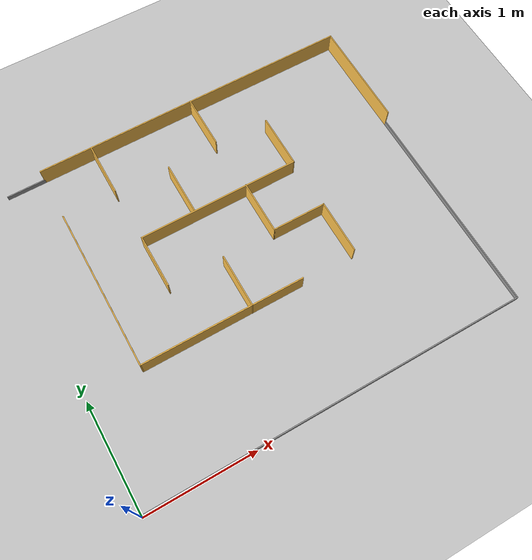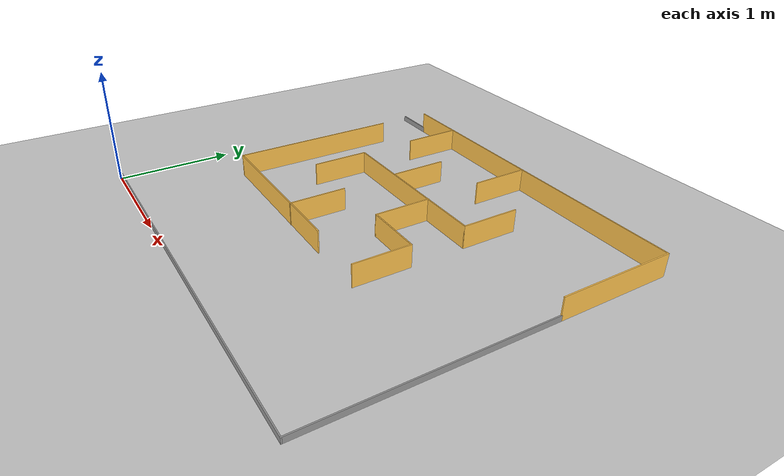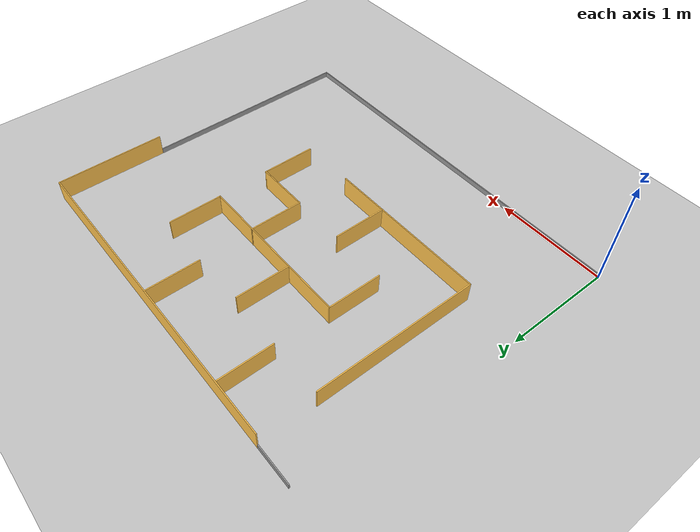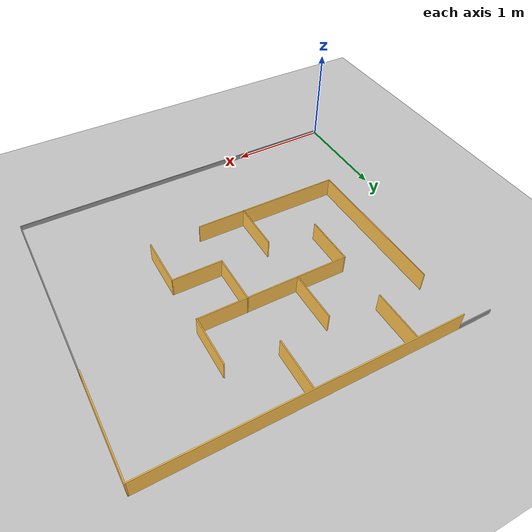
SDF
<sdf version="1.4">
  <world name="default">

    <scene>
      <ambient>0.4 0.4 0.4 1</ambient>
      <background>0.7 0.7 0.7 1</background>
      <shadows>true</shadows>
    </scene>

    <!-- A global light source -->
    <include>
      <uri>model://sun</uri>
    </include>

    <!-- A ground plane -->
    <include>
      <uri>model://ground_plane</uri>
    </include>

    <!-- My maze -->
    <include>
      <uri>model://my_maze</uri>
	<pose> 1.75 1.5 0 0 0 0</pose>
    </include>

    <physics type="ode">
      <real_time_update_rate>1000.0</real_time_update_rate>
      <max_step_size>0.001</max_step_size>
      <real_time_factor>1</real_time_factor>
      <ode>
        <solver>
          <type>quick</type>
          <iters>150</iters>
          <precon_iters>0</precon_iters>
          <sor>1.400000</sor>
          <use_dynamic_moi_rescaling>1</use_dynamic_moi_rescaling>
        </solver>
        <constraints>
          <cfm>0.00001</cfm>
          <erp>0.2</erp>
          <contact_max_correcting_vel>2000.000000</contact_max_correcting_vel>
          <contact_surface_layer>0.01000</contact_surface_layer>
        </constraints>
      </ode>
    </physics>
  </world>

</sdf>

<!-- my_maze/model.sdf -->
<sdf version='1.6'>
  <model name='my_maze'>
    <pose frame=''>0.257 -0.171 0 0 -0 0</pose>
    <link name='Wall_27'>
      <collision name='Wall_27_Collision'>
        <geometry>
          <box>
            <size>3 0.01 0.2</size>
          </box>
        </geometry>
        <pose frame=''>0 0 0.1 0 -0 0</pose>
      </collision>
      <visual name='Wall_27_Visual'>
        <pose frame=''>0 0 0.1 0 -0 0</pose>
        <geometry>
          <box>
            <size>3 0.01 0.2</size>
          </box>
        </geometry>
        <material>
          <script>
            <uri>file://media/materials/scripts/gazebo.material</uri>
            <name>Gazebo/Grey</name>
          </script>
          <ambient>1 0.764706 0.305882 1</ambient>
        </material>
      </visual>
      <pose frame=''>0.25 1.49 0 0 -0 0</pose>
    </link>
    <link name='Wall_29'>
      <collision name='Wall_29_Collision'>
        <geometry>
          <box>
            <size>0.5 0.01 0.2</size>
          </box>
        </geometry>
        <pose frame=''>0 0 0.1 0 -0 0</pose>
      </collision>
      <visual name='Wall_29_Visual'>
        <pose frame=''>0 0 0.1 0 -0 0</pose>
        <geometry>
          <box>
            <size>0.5 0.01 0.2</size>
          </box>
        </geometry>
        <material>
          <script>
            <uri>file://media/materials/scripts/gazebo.material</uri>
            <name>Gazebo/Grey</name>
          </script>
          <ambient>1 0.764706 0.305882 1</ambient>
        </material>
      </visual>
      <pose frame=''>-0.757 1.239 0 0 0 -1.5708</pose>
    </link>
    <link name='Wall_31'>
      <collision name='Wall_31_Collision'>
        <geometry>
          <box>
            <size>0.5 0.01 0.2</size>
          </box>
        </geometry>
        <pose frame=''>0 0 0.1 0 -0 0</pose>
      </collision>
      <visual name='Wall_31_Visual'>
        <pose frame=''>0 0 0.1 0 -0 0</pose>
        <geometry>
          <box>
            <size>0.5 0.01 0.2</size>
          </box>
        </geometry>
        <material>
          <script>
            <uri>file://media/materials/scripts/gazebo.material</uri>
            <name>Gazebo/Grey</name>
          </script>
          <ambient>1 0.764706 0.305882 1</ambient>
        </material>
      </visual>
      <pose frame=''>0.237 1.243 0 0 0 -1.5708</pose>
    </link>
    <link name='Wall_33'>
      <collision name='Wall_33_Collision'>
        <geometry>
          <box>
            <size>0.36 0.01 0.05</size>
          </box>
        </geometry>
        <pose frame=''>0 0 0.025 0 -0 0</pose>
      </collision>
      <visual name='Wall_33_Visual'>
        <pose frame=''>0 0 0.025 0 -0 0</pose>
        <geometry>
          <box>
            <size>0.36 0.01 0.05</size>
          </box>
        </geometry>
        <material>
          <script>
            <uri>file://media/materials/scripts/gazebo.material</uri>
            <name>Gazebo/Grey</name>
          </script>
          <ambient>0 0 0 1</ambient>
        </material>
      </visual>
      <pose frame=''>-1.42 1.49 0 0 -0 3.14159</pose>
    </link>
    <link name='Wall_35'>
      <collision name='Wall_35_Collision'>
        <geometry>
          <box>
            <size>1 0.01 0.2</size>
          </box>
        </geometry>
        <pose frame=''>0 0 0.1 0 -0 0</pose>
      </collision>
      <visual name='Wall_35_Visual'>
        <pose frame=''>0 0 0.1 0 -0 0</pose>
        <geometry>
          <box>
            <size>1 0.01 0.2</size>
          </box>
        </geometry>
        <material>
          <script>
            <uri>file://media/materials/scripts/gazebo.material</uri>
            <name>Gazebo/Grey</name>
          </script>
          <ambient>1 0.764706 0.305882 1</ambient>
        </material>
      </visual>
      <pose frame=''>1.745 0.995 0 0 0 -1.5708</pose>
    </link>
    <link name='Wall_38'>
      <collision name='Wall_38_Collision'>
        <geometry>
          <box>
            <size>1.5 0.01 0.2</size>
          </box>
        </geometry>
        <pose frame=''>0 0 0.1 0 -0 0</pose>
      </collision>
      <visual name='Wall_38_Visual'>
        <pose frame=''>0 0 0.1 0 -0 0</pose>
        <geometry>
          <box>
            <size>1.5 0.01 0.2</size>
          </box>
        </geometry>
        <material>
          <script>
            <uri>file://media/materials/scripts/gazebo.material</uri>
            <name>Gazebo/Grey</name>
          </script>
          <ambient>1 0.764706 0.305882 1</ambient>
        </material>
      </visual>
      <pose frame=''>-1.249 0.243 0 0 0 -1.5708</pose>
    </link>
    <link name='Wall_39'>
      <collision name='Wall_39_Collision'>
        <geometry>
          <box>
            <size>1.5 0.01 0.2</size>
          </box>
        </geometry>
        <pose frame=''>0 0 0.1 0 -0 0</pose>
      </collision>
      <visual name='Wall_39_Visual'>
        <pose frame=''>0 0 0.1 0 -0 0</pose>
        <geometry>
          <box>
            <size>1.5 0.01 0.2</size>
          </box>
        </geometry>
        <material>
          <script>
            <uri>file://media/materials/scripts/gazebo.material</uri>
            <name>Gazebo/Grey</name>
          </script>
          <ambient>1 0.764706 0.305882 1</ambient>
        </material>
      </visual>
      <pose frame=''>-0.504 -0.502 0 0 -0 0</pose>
    </link>
    <link name='Wall_41'>
      <collision name='Wall_41_Collision'>
        <geometry>
          <box>
            <size>0.5 0.01 0.2</size>
          </box>
        </geometry>
        <pose frame=''>0 0 0.1 0 -0 0</pose>
      </collision>
      <visual name='Wall_41_Visual'>
        <pose frame=''>0 0 0.1 0 -0 0</pose>
        <geometry>
          <box>
            <size>0.5 0.01 0.2</size>
          </box>
        </geometry>
        <material>
          <script>
            <uri>file://media/materials/scripts/gazebo.material</uri>
            <name>Gazebo/Grey</name>
          </script>
          <ambient>1 0.764706 0.305882 1</ambient>
        </material>
      </visual>
      <pose frame=''>-0.753 0.236 0 0 -0 1.5708</pose>
    </link>
    <link name='Wall_42'>
      <collision name='Wall_42_Collision'>
        <geometry>
          <box>
            <size>1.5 0.01 0.2</size>
          </box>
        </geometry>
        <pose frame=''>0 0 0.1 0 -0 0</pose>
      </collision>
      <visual name='Wall_42_Visual'>
        <pose frame=''>0 0 0.1 0 -0 0</pose>
        <geometry>
          <box>
            <size>1.5 0.01 0.2</size>
          </box>
        </geometry>
        <material>
          <script>
            <uri>file://media/materials/scripts/gazebo.material</uri>
            <name>Gazebo/Grey</name>
          </script>
          <ambient>1 0.764706 0.305882 1</ambient>
        </material>
      </visual>
      <pose frame=''>-0.008 0.481 0 0 -0 0</pose>
    </link>
    <link name='Wall_43'>
      <collision name='Wall_43_Collision'>
        <geometry>
          <box>
            <size>0.5 0.01 0.2</size>
          </box>
        </geometry>
        <pose frame=''>0 0 0.1 0 -0 0</pose>
      </collision>
      <visual name='Wall_43_Visual'>
        <pose frame=''>0 0 0.1 0 -0 0</pose>
        <geometry>
          <box>
            <size>0.5 0.01 0.2</size>
          </box>
        </geometry>
        <material>
          <script>
            <uri>file://media/materials/scripts/gazebo.material</uri>
            <name>Gazebo/Grey</name>
          </script>
          <ambient>1 0.764706 0.305882 1</ambient>
        </material>
      </visual>
      <pose frame=''>0.737 0.726 0 0 -0 1.5708</pose>
    </link>
    <link name='Wall_45'>
      <collision name='Wall_45_Collision'>
        <geometry>
          <box>
            <size>0.5 0.01 0.2</size>
          </box>
        </geometry>
        <pose frame=''>0 0 0.1 0 -0 0</pose>
      </collision>
      <visual name='Wall_45_Visual'>
        <pose frame=''>0 0 0.1 0 -0 0</pose>
        <geometry>
          <box>
            <size>0.5 0.01 0.2</size>
          </box>
        </geometry>
        <material>
          <script>
            <uri>file://media/materials/scripts/gazebo.material</uri>
            <name>Gazebo/Grey</name>
          </script>
          <ambient>1 0.764706 0.305882 1</ambient>
        </material>
      </visual>
      <pose frame=''>-0.247 0.729 0 0 -0 1.5708</pose>
    </link>
    <link name='Wall_47'>
      <collision name='Wall_47_Collision'>
        <geometry>
          <box>
            <size>0.5 0.01 0.2</size>
          </box>
        </geometry>
        <pose frame=''>0 0 0.1 0 -0 0</pose>
      </collision>
      <visual name='Wall_47_Visual'>
        <pose frame=''>0 0 0.1 0 -0 0</pose>
        <geometry>
          <box>
            <size>0.5 0.01 0.2</size>
          </box>
        </geometry>
        <material>
          <script>
            <uri>file://media/materials/scripts/gazebo.material</uri>
            <name>Gazebo/Grey</name>
          </script>
          <ambient>1 0.764706 0.305882 1</ambient>
        </material>
      </visual>
      <pose frame=''>0.256 0.239 0 0 0 -1.5708</pose>
    </link>
    <link name='Wall_48'>
      <collision name='Wall_48_Collision'>
        <geometry>
          <box>
            <size>0.5 0.01 0.2</size>
          </box>
        </geometry>
        <pose frame=''>0 0 0.1 0 -0 0</pose>
      </collision>
      <visual name='Wall_48_Visual'>
        <pose frame=''>0 0 0.1 0 -0 0</pose>
        <geometry>
          <box>
            <size>0.5 0.01 0.2</size>
          </box>
        </geometry>
        <material>
          <script>
            <uri>file://media/materials/scripts/gazebo.material</uri>
            <name>Gazebo/Grey</name>
          </script>
          <ambient>1 0.764706 0.305882 1</ambient>
        </material>
      </visual>
      <pose frame=''>0.501 -0.006 0 0 -0 0</pose>
    </link>
    <link name='Wall_49'>
      <collision name='Wall_49_Collision'>
        <geometry>
          <box>
            <size>0.5 0.01 0.2</size>
          </box>
        </geometry>
        <pose frame=''>0 0 0.1 0 -0 0</pose>
      </collision>
      <visual name='Wall_49_Visual'>
        <pose frame=''>0 0 0.1 0 -0 0</pose>
        <geometry>
          <box>
            <size>0.5 0.01 0.2</size>
          </box>
        </geometry>
        <material>
          <script>
            <uri>file://media/materials/scripts/gazebo.material</uri>
            <name>Gazebo/Grey</name>
          </script>
          <ambient>1 0.764706 0.305882 1</ambient>
        </material>
      </visual>
      <pose frame=''>0.746 -0.251 0 0 0 -1.5708</pose>
    </link>
    <link name='Wall_51'>
      <collision name='Wall_51_Collision'>
        <geometry>
          <box>
            <size>0.5 0.01 0.2</size>
          </box>
        </geometry>
        <pose frame=''>0 0 0.1 0 -0 0</pose>
      </collision>
      <visual name='Wall_51_Visual'>
        <pose frame=''>0 0 0.1 0 -0 0</pose>
        <geometry>
          <box>
            <size>0.5 0.01 0.2</size>
          </box>
        </geometry>
        <material>
          <script>
            <uri>file://media/materials/scripts/gazebo.material</uri>
            <name>Gazebo/Grey</name>
          </script>
          <ambient>1 0.764706 0.305882 1</ambient>
        </material>
      </visual>
      <pose frame=''>-0.238 -0.259 0 0 -0 1.5708</pose>
    </link>
    <link name='Wall_53'>
      <collision name='Wall_53_Collision'>
        <geometry>
          <box>
            <size>2 0.01 0.05</size>
          </box>
        </geometry>
        <pose frame=''>0 0 0.025 0 -0 0</pose>
      </collision>
      <visual name='Wall_53_Visual'>
        <pose frame=''>0 0 0.025 0 -0 0</pose>
        <geometry>
          <box>
            <size>2 0.01 0.05</size>
          </box>
        </geometry>
        <material>
          <script>
            <uri>file://media/materials/scripts/gazebo.material</uri>
            <name>Gazebo/Grey</name>
          </script>
          <ambient>0 0 0 1</ambient>
        </material>
      </visual>
      <pose frame=''>1.745 -0.495 0 0 0 -1.5708</pose>
    </link>
    <link name='Wall_54'>
      <collision name='Wall_54_Collision'>
        <geometry>
          <box>
            <size>3.5 0.01 0.05</size>
          </box>
        </geometry>
        <pose frame=''>0 0 0.025 0 -0 0</pose>
      </collision>
      <visual name='Wall_54_Visual'>
        <pose frame=''>0 0 0.025 0 -0 0</pose>
        <geometry>
          <box>
            <size>3.5 0.01 0.05</size>
          </box>
        </geometry>
        <material>
          <script>
            <uri>file://media/materials/scripts/gazebo.material</uri>
            <name>Gazebo/Grey</name>
          </script>
          <ambient>0 0 0 1</ambient>
        </material>
      </visual>
      <pose frame=''>0 -1.49 0 0 -0 3.14159</pose>
    </link>
    <static>1</static>
  </model>
</sdf>
